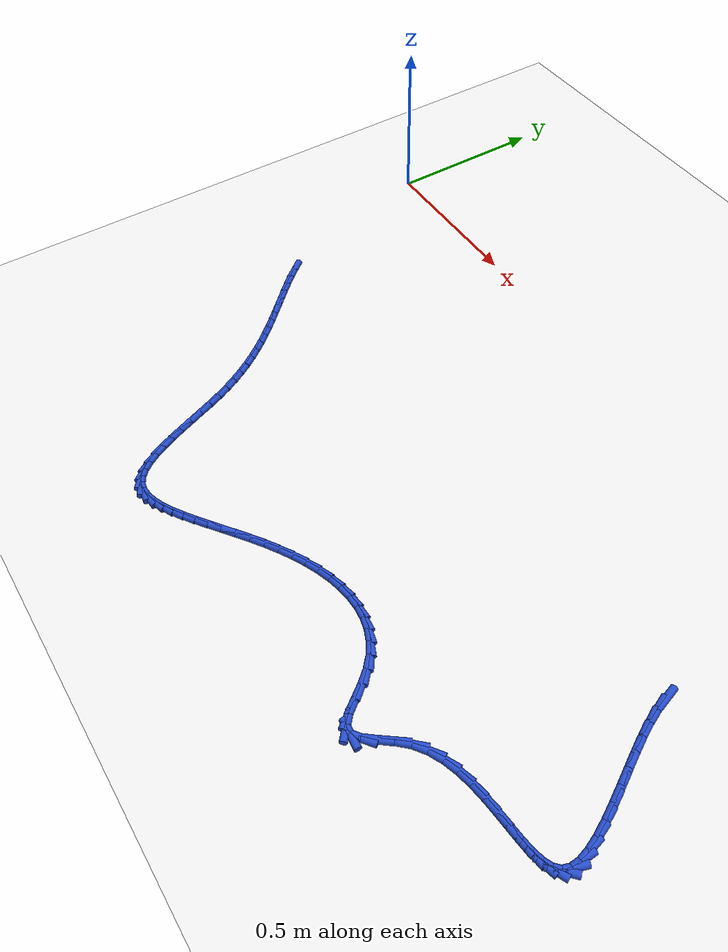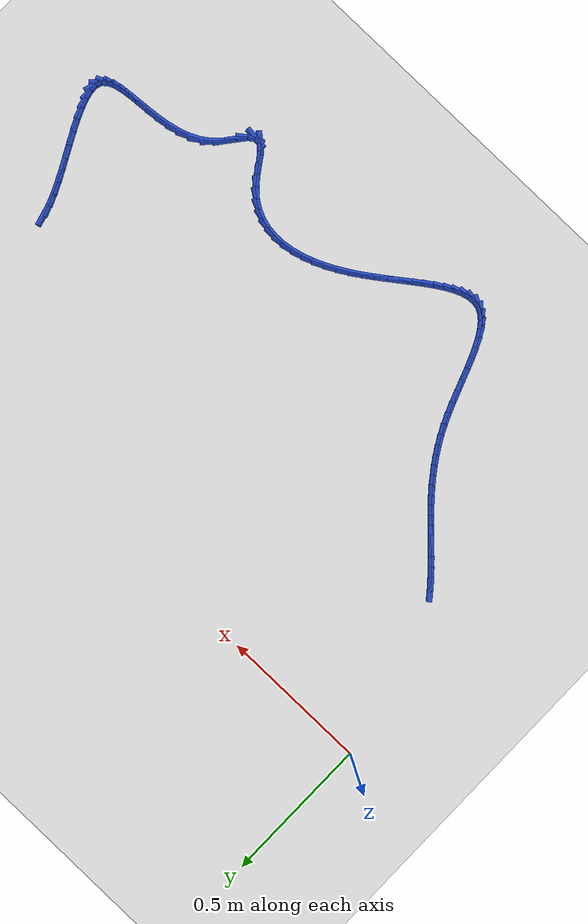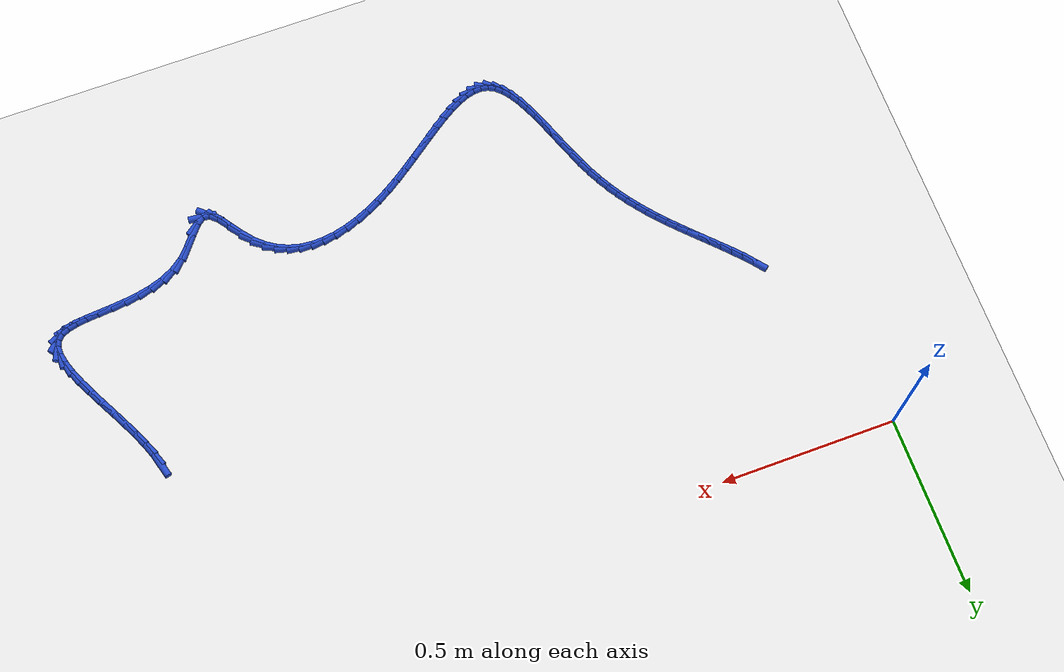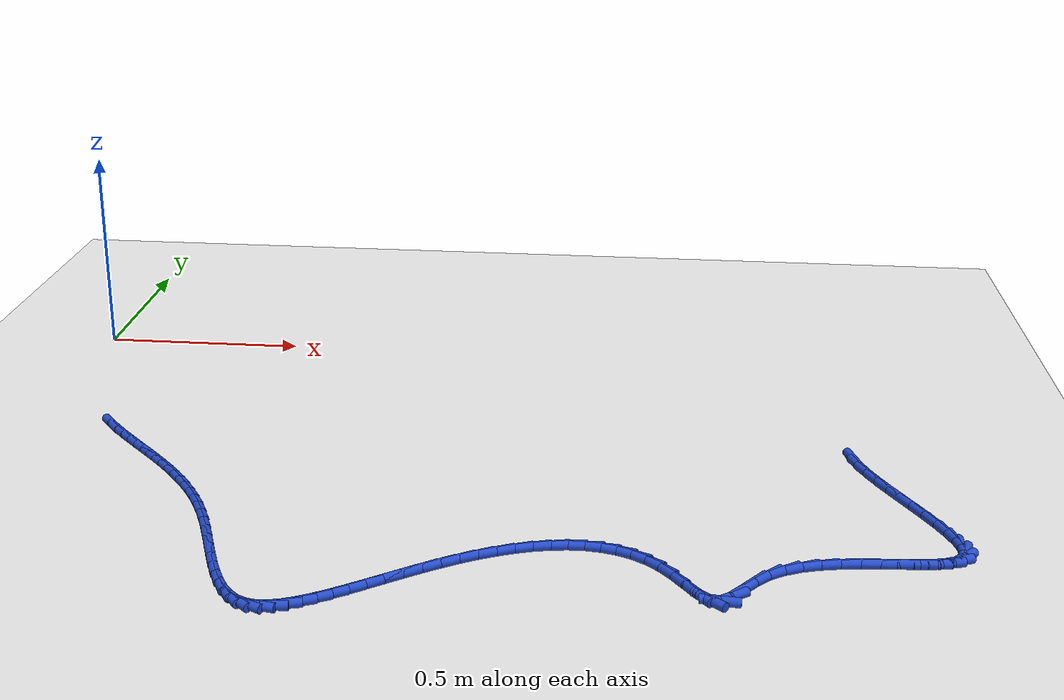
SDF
<sdf version="1.6">
 <world name="default">
  <model name="ground_plane">
   <static>1</static>
   <link name="link">
    <collision name="collision">
     <geometry><plane><normal>0 0 1</normal><size>100 100</size></plane></geometry>
     <surface><friction><ode><mu>100</mu><mu2>50</mu2></ode></friction></surface>
    </collision>
    <visual name="visual">
     <cast_shadows>0</cast_shadows>
     <geometry><plane><normal>0 0 1</normal><size>100 100</size></plane></geometry>
     <material>
      <script><uri>file://media/materials/scripts/gazebo.material</uri><name>Gazebo/WhiteGlow</name></script>
     </material>
    </visual>
   </link>
  </model>
  <model name="line">
   <link name="link_155">
    <pose>1.902216669200962 -0.5668904399281618 0.01 0 1.57 -1.3048344981465045</pose>
    <collision name="collision">
     <geometry><cylinder><radius>0.01</radius><length>0.08</length></cylinder></geometry>
    </collision>
    <visual name="visual">
     <material>
      <script><name>Gazebo/Blue</name><uri>file://media/materials/scripts/gazebo.material</uri></script>
     </material>
     <geometry><cylinder><radius>0.01</radius><length>0.08</length></cylinder></geometry>
    </visual>
   </link>
   <link name="link_156">
    <pose>1.9108414581026154 -0.5985508601704108 0.01 0 1.57 -1.2079651583550948</pose>
    <collision name="collision">
     <geometry><cylinder><radius>0.01</radius><length>0.08</length></cylinder></geometry>
    </collision>
    <visual name="visual">
     <material>
      <script><name>Gazebo/Blue</name><uri>file://media/materials/scripts/gazebo.material</uri></script>
     </material>
     <geometry><cylinder><radius>0.01</radius><length>0.08</length></cylinder></geometry>
    </visual>
   </link>
   <link name="link_157">
    <pose>1.923992331958791 -0.6331913684119473 0.01 0 1.57 -1.1475536828701733</pose>
    <collision name="collision">
     <geometry><cylinder><radius>0.01</radius><length>0.08</length></cylinder></geometry>
    </collision>
    <visual name="visual">
     <material>
      <script><name>Gazebo/Blue</name><uri>file://media/materials/scripts/gazebo.material</uri></script>
     </material>
     <geometry><cylinder><radius>0.01</radius><length>0.08</length></cylinder></geometry>
    </visual>
   </link>
   <link name="link_158">
    <pose>1.9406081023253767 -0.6700769812813461 0.01 0 1.57 -1.1108724636014342</pose>
    <collision name="collision">
     <geometry><cylinder><radius>0.01</radius><length>0.08</length></cylinder></geometry>
    </collision>
    <visual name="visual">
     <material>
      <script><name>Gazebo/Blue</name><uri>file://media/materials/scripts/gazebo.material</uri></script>
     </material>
     <geometry><cylinder><radius>0.01</radius><length>0.08</length></cylinder></geometry>
    </visual>
   </link>
   <link name="link_159">
    <pose>1.959627580758257 -0.7084727154071806 0.01 0 1.57 -1.091414806366081</pose>
    <collision name="collision">
     <geometry><cylinder><radius>0.01</radius><length>0.08</length></cylinder></geometry>
    </collision>
    <visual name="visual">
     <material>
      <script><name>Gazebo/Blue</name><uri>file://media/materials/scripts/gazebo.material</uri></script>
     </material>
     <geometry><cylinder><radius>0.01</radius><length>0.08</length></cylinder></geometry>
    </visual>
   </link>
   <link name="link_160">
    <pose>1.9799895788133177 -0.7476435874180244 0.01 0 1.57 -1.086199641081109</pose>
    <collision name="collision">
     <geometry><cylinder><radius>0.01</radius><length>0.08</length></cylinder></geometry>
    </collision>
    <visual name="visual">
     <material>
      <script><name>Gazebo/Blue</name><uri>file://media/materials/scripts/gazebo.material</uri></script>
     </material>
     <geometry><cylinder><radius>0.01</radius><length>0.08</length></cylinder></geometry>
    </visual>
   </link>
   <link name="link_161">
    <pose>2.000632908046445 -0.7868546139424514 0.01 0 1.57 -1.0946540336081387</pose>
    <collision name="collision">
     <geometry><cylinder><radius>0.01</radius><length>0.08</length></cylinder></geometry>
    </collision>
    <visual name="visual">
     <material>
      <script><name>Gazebo/Blue</name><uri>file://media/materials/scripts/gazebo.material</uri></script>
     </material>
     <geometry><cylinder><radius>0.01</radius><length>0.08</length></cylinder></geometry>
    </visual>
   </link>
   <link name="link_162">
    <pose>2.0204963800135243 -0.8253708116090348 0.01 0 1.57 -1.1184452782590444</pose>
    <collision name="collision">
     <geometry><cylinder><radius>0.01</radius><length>0.08</length></cylinder></geometry>
    </collision>
    <visual name="visual">
     <material>
      <script><name>Gazebo/Blue</name><uri>file://media/materials/scripts/gazebo.material</uri></script>
     </material>
     <geometry><cylinder><radius>0.01</radius><length>0.08</length></cylinder></geometry>
    </visual>
   </link>
   <link name="link_163">
    <pose>2.0385188062704405 -0.8624571970463487 0.01 0 1.57 -1.1621898173378593</pose>
    <collision name="collision">
     <geometry><cylinder><radius>0.01</radius><length>0.08</length></cylinder></geometry>
    </collision>
    <visual name="visual">
     <material>
      <script><name>Gazebo/Blue</name><uri>file://media/materials/scripts/gazebo.material</uri></script>
     </material>
     <geometry><cylinder><radius>0.01</radius><length>0.08</length></cylinder></geometry>
    </visual>
   </link>
   <link name="link_164">
    <pose>2.053638998373081 -0.8973787868829668 0.01 0 1.57 -1.2355372871036305</pose>
    <collision name="collision">
     <geometry><cylinder><radius>0.01</radius><length>0.08</length></cylinder></geometry>
    </collision>
    <visual name="visual">
     <material>
      <script><name>Gazebo/Blue</name><uri>file://media/materials/scripts/gazebo.material</uri></script>
     </material>
     <geometry><cylinder><radius>0.01</radius><length>0.08</length></cylinder></geometry>
    </visual>
   </link>
   <link name="link_165">
    <pose>2.0647957678773303 -0.9294005977474633 0.01 0 1.57 -1.3580458335022347</pose>
    <collision name="collision">
     <geometry><cylinder><radius>0.01</radius><length>0.08</length></cylinder></geometry>
    </collision>
    <visual name="visual">
     <material>
      <script><name>Gazebo/Blue</name><uri>file://media/materials/scripts/gazebo.material</uri></script>
     </material>
     <geometry><cylinder><radius>0.01</radius><length>0.08</length></cylinder></geometry>
    </visual>
   </link>
   <link name="link_166">
    <pose>2.070927926339074 -0.9577876462684103 0.01 0 1.57 -1.5688660968300714</pose>
    <collision name="collision">
     <geometry><cylinder><radius>0.01</radius><length>0.08</length></cylinder></geometry>
    </collision>
    <visual name="visual">
     <material>
      <script><name>Gazebo/Blue</name><uri>file://media/materials/scripts/gazebo.material</uri></script>
     </material>
     <geometry><cylinder><radius>0.01</radius><length>0.08</length></cylinder></geometry>
    </visual>
   </link>
   <link name="link_167">
    <pose>2.070974285314199 -0.9818049490743823 0.01 0 1.57 1.2125976817504938</pose>
    <collision name="collision">
     <geometry><cylinder><radius>0.01</radius><length>0.08</length></cylinder></geometry>
    </collision>
    <visual name="visual">
     <material>
      <script><name>Gazebo/Blue</name><uri>file://media/materials/scripts/gazebo.material</uri></script>
     </material>
     <geometry><cylinder><radius>0.01</radius><length>0.08</length></cylinder></geometry>
    </visual>
   </link>
   <link name="link_168">
    <pose>2.0638893783558565 -1.0007309567893081 0.01 0 1.57 0.7612286504603551</pose>
    <collision name="collision">
     <geometry><cylinder><radius>0.01</radius><length>0.08</length></cylinder></geometry>
    </collision>
    <visual name="visual">
     <material>
      <script><name>Gazebo/Blue</name><uri>file://media/materials/scripts/gazebo.material</uri></script>
     </material>
     <geometry><cylinder><radius>0.01</radius><length>0.08</length></cylinder></geometry>
    </visual>
   </link>
   <link name="link_169">
    <pose>2.0494178926092093 -1.0145192835996508 0.01 0 1.57 0.42860894460636756</pose>
    <collision name="collision">
     <geometry><cylinder><radius>0.01</radius><length>0.08</length></cylinder></geometry>
    </collision>
    <visual name="visual">
     <material>
      <script><name>Gazebo/Blue</name><uri>file://media/materials/scripts/gazebo.material</uri></script>
     </material>
     <geometry><cylinder><radius>0.01</radius><length>0.08</length></cylinder></geometry>
    </visual>
   </link>
   <link name="link_170">
    <pose>2.028448469206932 -1.0241010195363125 0.01 0 1.57 0.2364490787536004</pose>
    <collision name="collision">
     <geometry><cylinder><radius>0.01</radius><length>0.08</length></cylinder></geometry>
    </collision>
    <visual name="visual">
     <material>
      <script><name>Gazebo/Blue</name><uri>file://media/materials/scripts/gazebo.material</uri></script>
     </material>
     <geometry><cylinder><radius>0.01</radius><length>0.08</length></cylinder></geometry>
    </visual>
   </link>
   <link name="link_171">
    <pose>2.00195928243471 -1.0304837581393373 0.01 0 1.57 0.13425772488199023</pose>
    <collision name="collision">
     <geometry><cylinder><radius>0.01</radius><length>0.08</length></cylinder></geometry>
    </collision>
    <visual name="visual">
     <material>
      <script><name>Gazebo/Blue</name><uri>file://media/materials/scripts/gazebo.material</uri></script>
     </material>
     <geometry><cylinder><radius>0.01</radius><length>0.08</length></cylinder></geometry>
    </visual>
   </link>
   <link name="link_172">
    <pose>1.9709285065782254 -1.034675092948769 0.01 0 1.57 0.086719233175756</pose>
    <collision name="collision">
     <geometry><cylinder><radius>0.01</radius><length>0.08</length></cylinder></geometry>
    </collision>
    <visual name="visual">
     <material>
      <script><name>Gazebo/Blue</name><uri>file://media/materials/scripts/gazebo.material</uri></script>
     </material>
     <geometry><cylinder><radius>0.01</radius><length>0.08</length></cylinder></geometry>
    </visual>
   </link>
   <link name="link_173">
    <pose>1.9363343159231636 -1.0376826175046514 0.01 0 1.57 0.07600583452590662</pose>
    <collision name="collision">
     <geometry><cylinder><radius>0.01</radius><length>0.08</length></cylinder></geometry>
    </collision>
    <visual name="visual">
     <material>
      <script><name>Gazebo/Blue</name><uri>file://media/materials/scripts/gazebo.material</uri></script>
     </material>
     <geometry><cylinder><radius>0.01</radius><length>0.08</length></cylinder></geometry>
    </visual>
   </link>
   <link name="link_174">
    <pose>1.8991548847552076 -1.0405139253470286 0.01 0 1.57 0.0941527489379591</pose>
    <collision name="collision">
     <geometry><cylinder><radius>0.01</radius><length>0.08</length></cylinder></geometry>
    </collision>
    <visual name="visual">
     <material>
      <script><name>Gazebo/Blue</name><uri>file://media/materials/scripts/gazebo.material</uri></script>
     </material>
     <geometry><cylinder><radius>0.01</radius><length>0.08</length></cylinder></geometry>
    </visual>
   </link>
   <link name="link_175">
    <pose>1.860368387360042 -1.0441766100159449 0.01 0 1.57 0.13868536002823478</pose>
    <collision name="collision">
     <geometry><cylinder><radius>0.01</radius><length>0.08</length></cylinder></geometry>
    </collision>
    <visual name="visual">
     <material>
      <script><name>Gazebo/Blue</name><uri>file://media/materials/scripts/gazebo.material</uri></script>
     </material>
     <geometry><cylinder><radius>0.01</radius><length>0.08</length></cylinder></geometry>
    </visual>
   </link>
   <link name="link_176">
    <pose>1.8209529980233499 -1.049678265051444 0.01 0 1.57 0.21052817129821916</pose>
    <collision name="collision">
     <geometry><cylinder><radius>0.01</radius><length>0.08</length></cylinder></geometry>
    </collision>
    <visual name="visual">
     <material>
      <script><name>Gazebo/Blue</name><uri>file://media/materials/scripts/gazebo.material</uri></script>
     </material>
     <geometry><cylinder><radius>0.01</radius><length>0.08</length></cylinder></geometry>
    </visual>
   </link>
   <link name="link_177">
    <pose>1.7818868910308159 -1.0580264839935705 0.01 0 1.57 0.31272882272386116</pose>
    <collision name="collision">
     <geometry><cylinder><radius>0.01</radius><length>0.08</length></cylinder></geometry>
    </collision>
    <visual name="visual">
     <material>
      <script><name>Gazebo/Blue</name><uri>file://media/materials/scripts/gazebo.material</uri></script>
     </material>
     <geometry><cylinder><radius>0.01</radius><length>0.08</length></cylinder></geometry>
    </visual>
   </link>
   <link name="link_178">
    <pose>1.7441482406681232 -1.0702288603823675 0.01 0 1.57 0.448810050961958</pose>
    <collision name="collision">
     <geometry><cylinder><radius>0.01</radius><length>0.08</length></cylinder></geometry>
    </collision>
    <visual name="visual">
     <material>
      <script><name>Gazebo/Blue</name><uri>file://media/materials/scripts/gazebo.material</uri></script>
     </material>
     <geometry><cylinder><radius>0.01</radius><length>0.08</length></cylinder></geometry>
    </visual>
   </link>
   <link name="link_179">
    <pose>1.708715221220956 -1.0872929877578796 0.01 0 1.57 0.6196261109645379</pose>
    <collision name="collision">
     <geometry><cylinder><radius>0.01</radius><length>0.08</length></cylinder></geometry>
    </collision>
    <visual name="visual">
     <material>
      <script><name>Gazebo/Blue</name><uri>file://media/materials/scripts/gazebo.material</uri></script>
     </material>
     <geometry><cylinder><radius>0.01</radius><length>0.08</length></cylinder></geometry>
    </visual>
   </link>
   <link name="link_180">
    <pose>1.6765660069749981 -1.1102264596601508 0.01 0 1.57 0.8072228730689643</pose>
    <collision name="collision">
     <geometry><cylinder><radius>0.01</radius><length>0.08</length></cylinder></geometry>
    </collision>
    <visual name="visual">
     <material>
      <script><name>Gazebo/Blue</name><uri>file://media/materials/scripts/gazebo.material</uri></script>
     </material>
     <geometry><cylinder><radius>0.01</radius><length>0.08</length></cylinder></geometry>
    </visual>
   </link>
   <link name="link_181">
    <pose>1.648534164861469 -1.1395093784329824 0.01 0 1.57 0.9103742696268916</pose>
    <collision name="collision">
     <geometry><cylinder><radius>0.01</radius><length>0.08</length></cylinder></geometry>
    </collision>
    <visual name="visual">
     <material>
      <script><name>Gazebo/Blue</name><uri>file://media/materials/scripts/gazebo.material</uri></script>
     </material>
     <geometry><cylinder><radius>0.01</radius><length>0.08</length></cylinder></geometry>
    </visual>
   </link>
   <link name="link_182">
    <pose>1.6241566432866594 -1.1708921087154547 0.01 0 1.57 0.8851980757593264</pose>
    <collision name="collision">
     <geometry><cylinder><radius>0.01</radius><length>0.08</length></cylinder></geometry>
    </collision>
    <visual name="visual">
     <material>
      <script><name>Gazebo/Blue</name><uri>file://media/materials/scripts/gazebo.material</uri></script>
     </material>
     <geometry><cylinder><radius>0.01</radius><length>0.08</length></cylinder></geometry>
    </visual>
   </link>
   <link name="link_183">
    <pose>1.6022863130751914 -1.1976296724774271 0.01 0 1.57 0.6415521189436177</pose>
    <collision name="collision">
     <geometry><cylinder><radius>0.01</radius><length>0.08</length></cylinder></geometry>
    </collision>
    <visual name="visual">
     <material>
      <script><name>Gazebo/Blue</name><uri>file://media/materials/scripts/gazebo.material</uri></script>
     </material>
     <geometry><cylinder><radius>0.01</radius><length>0.08</length></cylinder></geometry>
    </visual>
   </link>
   <link name="link_184">
    <pose>1.5817698815111667 -1.2129546086458025 0.01 0 1.57 -0.11190681473980948</pose>
    <collision name="collision">
     <geometry><cylinder><radius>0.01</radius><length>0.08</length></cylinder></geometry>
    </collision>
    <visual name="visual">
     <material>
      <script><name>Gazebo/Blue</name><uri>file://media/materials/scripts/gazebo.material</uri></script>
     </material>
     <geometry><cylinder><radius>0.01</radius><length>0.08</length></cylinder></geometry>
    </visual>
   </link>
   <link name="link_185">
    <pose>1.5614849535278528 -1.210675063329343 0.01 0 1.57 -0.7342423017345074</pose>
    <collision name="collision">
     <geometry><cylinder><radius>0.01</radius><length>0.08</length></cylinder></geometry>
    </collision>
    <visual name="visual">
     <material>
      <script><name>Gazebo/Blue</name><uri>file://media/materials/scripts/gazebo.material</uri></script>
     </material>
     <geometry><cylinder><radius>0.01</radius><length>0.08</length></cylinder></geometry>
    </visual>
   </link>
   <link name="link_186">
    <pose>1.5407019197533285 -1.191916576450702 0.01 0 1.57 -0.9287573587720803</pose>
    <collision name="collision">
     <geometry><cylinder><radius>0.01</radius><length>0.08</length></cylinder></geometry>
    </collision>
    <visual name="visual">
     <material>
      <script><name>Gazebo/Blue</name><uri>file://media/materials/scripts/gazebo.material</uri></script>
     </material>
     <geometry><cylinder><radius>0.01</radius><length>0.08</length></cylinder></geometry>
    </visual>
   </link>
   <link name="link_187">
    <pose>1.5189615056878925 -1.162840886418869 0.01 0 1.57 -0.9608922976198541</pose>
    <collision name="collision">
     <geometry><cylinder><radius>0.01</radius><length>0.08</length></cylinder></geometry>
    </collision>
    <visual name="visual">
     <material>
      <script><name>Gazebo/Blue</name><uri>file://media/materials/scripts/gazebo.material</uri></script>
     </material>
     <geometry><cylinder><radius>0.01</radius><length>0.08</length></cylinder></geometry>
    </visual>
   </link>
   <link name="link_188">
    <pose>1.4958097676784317 -1.1297090425504461 0.01 0 1.57 -0.8914050594994153</pose>
    <collision name="collision">
     <geometry><cylinder><radius>0.01</radius><length>0.08</length></cylinder></geometry>
    </collision>
    <visual name="visual">
     <material>
      <script><name>Gazebo/Blue</name><uri>file://media/materials/scripts/gazebo.material</uri></script>
     </material>
     <geometry><cylinder><radius>0.01</radius><length>0.08</length></cylinder></geometry>
    </visual>
   </link>
   <link name="link_189">
    <pose>1.4707971069745978 -1.0987395585200899 0.01 0 1.57 -0.7468087875730529</pose>
    <collision name="collision">
     <geometry><cylinder><radius>0.01</radius><length>0.08</length></cylinder></geometry>
    </collision>
    <visual name="visual">
     <material>
      <script><name>Gazebo/Blue</name><uri>file://media/materials/scripts/gazebo.material</uri></script>
     </material>
     <geometry><cylinder><radius>0.01</radius><length>0.08</length></cylinder></geometry>
    </visual>
   </link>
   <link name="link_190">
    <pose>1.4437261949870928 -1.0736812786385121 0.01 0 1.57 -0.5852715742083122</pose>
    <collision name="collision">
     <geometry><cylinder><radius>0.01</radius><length>0.08</length></cylinder></geometry>
    </collision>
    <visual name="visual">
     <material>
      <script><name>Gazebo/Blue</name><uri>file://media/materials/scripts/gazebo.material</uri></script>
     </material>
     <geometry><cylinder><radius>0.01</radius><length>0.08</length></cylinder></geometry>
    </visual>
   </link>
   <link name="link_191">
    <pose>1.4147859534895797 -1.0545017411584825 0.01 0 1.57 -0.41981969043859113</pose>
    <collision name="collision">
     <geometry><cylinder><radius>0.01</radius><length>0.08</length></cylinder></geometry>
    </collision>
    <visual name="visual">
     <material>
      <script><name>Gazebo/Blue</name><uri>file://media/materials/scripts/gazebo.material</uri></script>
     </material>
     <geometry><cylinder><radius>0.01</radius><length>0.08</length></cylinder></geometry>
    </visual>
   </link>
   <link name="link_192">
    <pose>1.3841979789608212 -1.0408486061600084 0.01 0 1.57 -0.2589095117361431</pose>
    <collision name="collision">
     <geometry><cylinder><radius>0.01</radius><length>0.08</length></cylinder></geometry>
    </collision>
    <visual name="visual">
     <material>
      <script><name>Gazebo/Blue</name><uri>file://media/materials/scripts/gazebo.material</uri></script>
     </material>
     <geometry><cylinder><radius>0.01</radius><length>0.08</length></cylinder></geometry>
    </visual>
   </link>
   <link name="link_193">
    <pose>1.35218386787958 -1.0323695337230967 0.01 0 1.57 -0.10965762535059159</pose>
    <collision name="collision">
     <geometry><cylinder><radius>0.01</radius><length>0.08</length></cylinder></geometry>
    </collision>
    <visual name="visual">
     <material>
      <script><name>Gazebo/Blue</name><uri>file://media/materials/scripts/gazebo.material</uri></script>
     </material>
     <geometry><cylinder><radius>0.01</radius><length>0.08</length></cylinder></geometry>
    </visual>
   </link>
   <link name="link_194">
    <pose>1.3189652167246182 -1.0287121839277549 0.01 0 1.57 0.02373808591316115</pose>
    <collision name="collision">
     <geometry><cylinder><radius>0.01</radius><length>0.08</length></cylinder></geometry>
    </collision>
    <visual name="visual">
     <material>
      <script><name>Gazebo/Blue</name><uri>file://media/materials/scripts/gazebo.material</uri></script>
     </material>
     <geometry><cylinder><radius>0.01</radius><length>0.08</length></cylinder></geometry>
    </visual>
   </link>
   <link name="link_195">
    <pose>1.2847636219746996 -1.02952421685399 0.01 0 1.57 0.14005697825410446</pose>
    <collision name="collision">
     <geometry><cylinder><radius>0.01</radius><length>0.08</length></cylinder></geometry>
    </collision>
    <visual name="visual">
     <material>
      <script><name>Gazebo/Blue</name><uri>file://media/materials/scripts/gazebo.material</uri></script>
     </material>
     <geometry><cylinder><radius>0.01</radius><length>0.08</length></cylinder></geometry>
    </visual>
   </link>
   <link name="link_196">
    <pose>1.2498006801085864 -1.03445329258181 0.01 0 1.57 0.24015085653568527</pose>
    <collision name="collision">
     <geometry><cylinder><radius>0.01</radius><length>0.08</length></cylinder></geometry>
    </collision>
    <visual name="visual">
     <material>
      <script><name>Gazebo/Blue</name><uri>file://media/materials/scripts/gazebo.material</uri></script>
     </material>
     <geometry><cylinder><radius>0.01</radius><length>0.08</length></cylinder></geometry>
    </visual>
   </link>
   <link name="link_197">
    <pose>1.2142979876050402 -1.043147071191221 0.01 0 1.57 0.32591197168483843</pose>
    <collision name="collision">
     <geometry><cylinder><radius>0.01</radius><length>0.08</length></cylinder></geometry>
    </collision>
    <visual name="visual">
     <material>
      <script><name>Gazebo/Blue</name><uri>file://media/materials/scripts/gazebo.material</uri></script>
     </material>
     <geometry><cylinder><radius>0.01</radius><length>0.08</length></cylinder></geometry>
    </visual>
   </link>
   <link name="link_198">
    <pose>1.178477140942826 -1.055253212762231 0.01 0 1.57 0.3995400288019717</pose>
    <collision name="collision">
     <geometry><cylinder><radius>0.01</radius><length>0.08</length></cylinder></geometry>
    </collision>
    <visual name="visual">
     <material>
      <script><name>Gazebo/Blue</name><uri>file://media/materials/scripts/gazebo.material</uri></script>
     </material>
     <geometry><cylinder><radius>0.01</radius><length>0.08</length></cylinder></geometry>
    </visual>
   </link>
   <link name="link_199">
    <pose>1.1425597366007052 -1.0704193773748463 0.01 0 1.57 0.46314827096433303</pose>
    <collision name="collision">
     <geometry><cylinder><radius>0.01</radius><length>0.08</length></cylinder></geometry>
    </collision>
    <visual name="visual">
     <material>
      <script><name>Gazebo/Blue</name><uri>file://media/materials/scripts/gazebo.material</uri></script>
     </material>
     <geometry><cylinder><radius>0.01</radius><length>0.08</length></cylinder></geometry>
    </visual>
   </link>
   <link name="link_200">
    <pose>1.1067673710574408 -1.0882932251090751 0.01 0 1.57 0.5185819902758831</pose>
    <collision name="collision">
     <geometry><cylinder><radius>0.01</radius><length>0.08</length></cylinder></geometry>
    </collision>
    <visual name="visual">
     <material>
      <script><name>Gazebo/Blue</name><uri>file://media/materials/scripts/gazebo.material</uri></script>
     </material>
     <geometry><cylinder><radius>0.01</radius><length>0.08</length></cylinder></geometry>
    </visual>
   </link>
   <link name="link_201">
    <pose>1.0713212757163182 -1.108521619982036 0.01 0 1.57 0.5650623373527512</pose>
    <collision name="collision">
     <geometry><cylinder><radius>0.01</radius><length>0.08</length></cylinder></geometry>
    </collision>
    <visual name="visual">
     <material>
      <script><name>Gazebo/Blue</name><uri>file://media/materials/scripts/gazebo.material</uri></script>
     </material>
     <geometry><cylinder><radius>0.01</radius><length>0.08</length></cylinder></geometry>
    </visual>
   </link>
   <link name="link_202">
    <pose>1.0364014916694353 -1.1306616087535386 0.01 0 1.57 0.5995480095689523</pose>
    <collision name="collision">
     <geometry><cylinder><radius>0.01</radius><length>0.08</length></cylinder></geometry>
    </collision>
    <visual name="visual">
     <material>
      <script><name>Gazebo/Blue</name><uri>file://media/materials/scripts/gazebo.material</uri></script>
     </material>
     <geometry><cylinder><radius>0.01</radius><length>0.08</length></cylinder></geometry>
    </visual>
   </link>
   <link name="link_203">
    <pose>1.002109618951108 -1.154099194059975 0.01 0 1.57 0.6226634520423712</pose>
    <collision name="collision">
     <geometry><cylinder><radius>0.01</radius><length>0.08</length></cylinder></geometry>
    </collision>
    <visual name="visual">
     <material>
      <script><name>Gazebo/Blue</name><uri>file://media/materials/scripts/gazebo.material</uri></script>
     </material>
     <geometry><cylinder><radius>0.01</radius><length>0.08</length></cylinder></geometry>
    </visual>
   </link>
   <link name="link_204">
    <pose>0.9685384587348657 -1.1782011922407511 0.01 0 1.57 0.6349478702539472</pose>
    <collision name="collision">
     <geometry><cylinder><radius>0.01</radius><length>0.08</length></cylinder></geometry>
    </collision>
    <visual name="visual">
     <material>
      <script><name>Gazebo/Blue</name><uri>file://media/materials/scripts/gazebo.material</uri></script>
     </material>
     <geometry><cylinder><radius>0.01</radius><length>0.08</length></cylinder></geometry>
    </visual>
   </link>
   <link name="link_205">
    <pose>0.935780812194238 -1.2023344196352717 0.01 0 1.57 0.6362845196816364</pose>
    <collision name="collision">
     <geometry><cylinder><radius>0.01</radius><length>0.08</length></cylinder></geometry>
    </collision>
    <visual name="visual">
     <material>
      <script><name>Gazebo/Blue</name><uri>file://media/materials/scripts/gazebo.material</uri></script>
     </material>
     <geometry><cylinder><radius>0.01</radius><length>0.08</length></cylinder></geometry>
    </visual>
   </link>
   <link name="link_206">
    <pose>0.9039294805027542 -1.2258656925829436 0.01 0 1.57 0.6257827526243948</pose>
    <collision name="collision">
     <geometry><cylinder><radius>0.01</radius><length>0.08</length></cylinder></geometry>
    </collision>
    <visual name="visual">
     <material>
      <script><name>Gazebo/Blue</name><uri>file://media/materials/scripts/gazebo.material</uri></script>
     </material>
     <geometry><cylinder><radius>0.01</radius><length>0.08</length></cylinder></geometry>
    </visual>
   </link>
   <link name="link_207">
    <pose>0.8730772648339429 -1.2481618274231727 0.01 0 1.57 0.6015478745964258</pose>
    <collision name="collision">
     <geometry><cylinder><radius>0.01</radius><length>0.08</length></cylinder></geometry>
    </collision>
    <visual name="visual">
     <material>
      <script><name>Gazebo/Blue</name><uri>file://media/materials/scripts/gazebo.material</uri></script>
     </material>
     <geometry><cylinder><radius>0.01</radius><length>0.08</length></cylinder></geometry>
    </visual>
   </link>
   <link name="link_208">
    <pose>0.8433169663613334 -1.2685896404953652 0.01 0 1.57 0.5602727898634986</pose>
    <collision name="collision">
     <geometry><cylinder><radius>0.01</radius><length>0.08</length></cylinder></geometry>
    </collision>
    <visual name="visual">
     <material>
      <script><name>Gazebo/Blue</name><uri>file://media/materials/scripts/gazebo.material</uri></script>
     </material>
     <geometry><cylinder><radius>0.01</radius><length>0.08</length></cylinder></geometry>
    </visual>
   </link>
   <link name="link_209">
    <pose>0.8147413862584545 -1.2865159481389263 0.01 0 1.57 0.496569144146594</pose>
    <collision name="collision">
     <geometry><cylinder><radius>0.01</radius><length>0.08</length></cylinder></geometry>
    </collision>
    <visual name="visual">
     <material>
      <script><name>Gazebo/Blue</name><uri>file://media/materials/scripts/gazebo.material</uri></script>
     </material>
     <geometry><cylinder><radius>0.01</radius><length>0.08</length></cylinder></geometry>
    </visual>
   </link>
   <link name="link_210">
    <pose>0.7874433256988355 -1.3013075666932623 0.01 0 1.57 0.4020162194447222</pose>
    <collision name="collision">
     <geometry><cylinder><radius>0.01</radius><length>0.08</length></cylinder></geometry>
    </collision>
    <visual name="visual">
     <material>
      <script><name>Gazebo/Blue</name><uri>file://media/materials/scripts/gazebo.material</uri></script>
     </material>
     <geometry><cylinder><radius>0.01</radius><length>0.08</length></cylinder></geometry>
    </visual>
   </link>
   <link name="link_211">
    <pose>0.7615155858560054 -1.3123313124977793 0.01 0 1.57 0.2643686246396174</pose>
    <collision name="collision">
     <geometry><cylinder><radius>0.01</radius><length>0.08</length></cylinder></geometry>
    </collision>
    <visual name="visual">
     <material>
      <script><name>Gazebo/Blue</name><uri>file://media/materials/scripts/gazebo.material</uri></script>
     </material>
     <geometry><cylinder><radius>0.01</radius><length>0.08</length></cylinder></geometry>
    </visual>
   </link>
   <link name="link_212">
    <pose>0.7370509679034933 -1.318954001891883 0.01 0 1.57 0.0692274702807489</pose>
    <collision name="collision">
     <geometry><cylinder><radius>0.01</radius><length>0.08</length></cylinder></geometry>
    </collision>
    <visual name="visual">
     <material>
      <script><name>Gazebo/Blue</name><uri>file://media/materials/scripts/gazebo.material</uri></script>
     </material>
     <geometry><cylinder><radius>0.01</radius><length>0.08</length></cylinder></geometry>
    </visual>
   </link>
   <link name="link_213">
    <pose>0.7141422730148279 -1.3205424512149795 0.01 0 1.57 -0.18955817912903616</pose>
    <collision name="collision">
     <geometry><cylinder><radius>0.01</radius><length>0.08</length></cylinder></geometry>
    </collision>
    <visual name="visual">
     <material>
      <script><name>Gazebo/Blue</name><uri>file://media/materials/scripts/gazebo.material</uri></script>
     </material>
     <geometry><cylinder><radius>0.01</radius><length>0.08</length></cylinder></geometry>
    </visual>
   </link>
   <link name="link_214">
    <pose>0.6928823023635392 -1.3164634768064745 0.01 0 1.57 -0.48402492140945147</pose>
    <collision name="collision">
     <geometry><cylinder><radius>0.01</radius><length>0.08</length></cylinder></geometry>
    </collision>
    <visual name="visual">
     <material>
      <script><name>Gazebo/Blue</name><uri>file://media/materials/scripts/gazebo.material</uri></script>
     </material>
     <geometry><cylinder><radius>0.01</radius><length>0.08</length></cylinder></geometry>
    </visual>
   </link>
   <link name="link_215">
    <pose>0.6733386600280102 -1.3061886524569664 0.01 0 1.57 -0.7322236267282068</pose>
    <collision name="collision">
     <geometry><cylinder><radius>0.01</radius><length>0.08</length></cylinder></geometry>
    </collision>
    <visual name="visual">
     <material>
      <script><name>Gazebo/Blue</name><uri>file://media/materials/scripts/gazebo.material</uri></script>
     </material>
     <geometry><cylinder><radius>0.01</radius><length>0.08</length></cylinder></geometry>
    </visual>
   </link>
   <link name="link_216">
    <pose>0.6553743867560298 -1.290040028291584 0.01 0 1.57 -0.9078659084439933</pose>
    <collision name="collision">
     <geometry><cylinder><radius>0.01</radius><length>0.08</length></cylinder></geometry>
    </collision>
    <visual name="visual">
     <material>
      <script><name>Gazebo/Blue</name><uri>file://media/materials/scripts/gazebo.material</uri></script>
     </material>
     <geometry><cylinder><radius>0.01</radius><length>0.08</length></cylinder></geometry>
    </visual>
   </link>
   <link name="link_217">
    <pose>0.6387531340488485 -1.2687528673111088 0.01 0 1.57 -1.0274444216833383</pose>
    <collision name="collision">
     <geometry><cylinder><radius>0.01</radius><length>0.08</length></cylinder></geometry>
    </collision>
    <visual name="visual">
     <material>
      <script><name>Gazebo/Blue</name><uri>file://media/materials/scripts/gazebo.material</uri></script>
     </material>
     <geometry><cylinder><radius>0.01</radius><length>0.08</length></cylinder></geometry>
    </visual>
   </link>
   <link name="link_218">
    <pose>0.6232378936814437 -1.243065175342132 0.01 0 1.57 -1.1079360011601846</pose>
    <collision name="collision">
     <geometry><cylinder><radius>0.01</radius><length>0.08</length></cylinder></geometry>
    </collision>
    <visual name="visual">
     <material>
      <script><name>Gazebo/Blue</name><uri>file://media/materials/scripts/gazebo.material</uri></script>
     </material>
     <geometry><cylinder><radius>0.01</radius><length>0.08</length></cylinder></geometry>
    </visual>
   </link>
   <link name="link_219">
    <pose>0.6085916574287924 -1.2137149582112448 0.01 0 1.57 -1.161144742258869</pose>
    <collision name="collision">
     <geometry><cylinder><radius>0.01</radius><length>0.08</length></cylinder></geometry>
    </collision>
    <visual name="visual">
     <material>
      <script><name>Gazebo/Blue</name><uri>file://media/materials/scripts/gazebo.material</uri></script>
     </material>
     <geometry><cylinder><radius>0.01</radius><length>0.08</length></cylinder></geometry>
    </visual>
   </link>
   <link name="link_220">
    <pose>0.5945774170658711 -1.1814402217450368 0.01 0 1.57 -1.1944305332618508</pose>
    <collision name="collision">
     <geometry><cylinder><radius>0.01</radius><length>0.08</length></cylinder></geometry>
    </collision>
    <visual name="visual">
     <material>
      <script><name>Gazebo/Blue</name><uri>file://media/materials/scripts/gazebo.material</uri></script>
     </material>
     <geometry><cylinder><radius>0.01</radius><length>0.08</length></cylinder></geometry>
    </visual>
   </link>
   <link name="link_221">
    <pose>0.580958164367658 -1.1469789717701016 0.01 0 1.57 -1.2121449468814562</pose>
    <collision name="collision">
     <geometry><cylinder><radius>0.01</radius><length>0.08</length></cylinder></geometry>
    </collision>
    <visual name="visual">
     <material>
      <script><name>Gazebo/Blue</name><uri>file://media/materials/scripts/gazebo.material</uri></script>
     </material>
     <geometry><cylinder><radius>0.01</radius><length>0.08</length></cylinder></geometry>
    </visual>
   </link>
   <link name="link_222">
    <pose>0.5674968911091298 -1.111069214113029 0.01 0 1.57 -1.2166372565263301</pose>
    <collision name="collision">
     <geometry><cylinder><radius>0.01</radius><length>0.08</length></cylinder></geometry>
    </collision>
    <visual name="visual">
     <material>
      <script><name>Gazebo/Blue</name><uri>file://media/materials/scripts/gazebo.material</uri></script>
     </material>
     <geometry><cylinder><radius>0.01</radius><length>0.08</length></cylinder></geometry>
    </visual>
   </link>
   <link name="link_223">
    <pose>0.5539565890652632 -1.0744489546004103 0.01 0 1.57 -1.2088177395455995</pose>
    <collision name="collision">
     <geometry><cylinder><radius>0.01</radius><length>0.08</length></cylinder></geometry>
    </collision>
    <visual name="visual">
     <material>
      <script><name>Gazebo/Blue</name><uri>file://media/materials/scripts/gazebo.material</uri></script>
     </material>
     <geometry><cylinder><radius>0.01</radius><length>0.08</length></cylinder></geometry>
    </visual>
   </link>
   <link name="link_224">
    <pose>0.5401002500110357 -1.0378561990588366 0.01 0 1.57 -1.188402861132362</pose>
    <collision name="collision">
     <geometry><cylinder><radius>0.01</radius><length>0.08</length></cylinder></geometry>
    </collision>
    <visual name="visual">
     <material>
      <script><name>Gazebo/Blue</name><uri>file://media/materials/scripts/gazebo.material</uri></script>
     </material>
     <geometry><cylinder><radius>0.01</radius><length>0.08</length></cylinder></geometry>
    </visual>
   </link>
   <link name="link_225">
    <pose>0.5256908657214244 -1.0020289533148992 0.01 0 1.57 -1.153964816424006</pose>
    <collision name="collision">
     <geometry><cylinder><radius>0.01</radius><length>0.08</length></cylinder></geometry>
    </collision>
    <visual name="visual">
     <material>
      <script><name>Gazebo/Blue</name><uri>file://media/materials/scripts/gazebo.material</uri></script>
     </material>
     <geometry><cylinder><radius>0.01</radius><length>0.08</length></cylinder></geometry>
    </visual>
   </link>
   <link name="link_226">
    <pose>0.510492114828147 -0.9677030225241515 0.01 0 1.57 -1.1085392764176447</pose>
    <collision name="collision">
     <geometry><cylinder><radius>0.01</radius><length>0.08</length></cylinder></geometry>
    </collision>
    <visual name="visual">
     <material>
      <script><name>Gazebo/Blue</name><uri>file://media/materials/scripts/gazebo.material</uri></script>
     </material>
     <geometry><cylinder><radius>0.01</radius><length>0.08</length></cylinder></geometry>
    </visual>
   </link>
   <link name="link_227">
    <pose>0.4943584822933126 -0.9353232707339678 0.01 0 1.57 -1.062413619862031</pose>
    <collision name="collision">
     <geometry><cylinder><radius>0.01</radius><length>0.08</length></cylinder></geometry>
    </collision>
    <visual name="visual">
     <material>
      <script><name>Gazebo/Blue</name><uri>file://media/materials/scripts/gazebo.material</uri></script>
     </material>
     <geometry><cylinder><radius>0.01</radius><length>0.08</length></cylinder></geometry>
    </visual>
   </link>
   <link name="link_228">
    <pose>0.47732511163015723 -0.9047557367177498 0.01 0 1.57 -1.0177287498059</pose>
    <collision name="collision">
     <geometry><cylinder><radius>0.01</radius><length>0.08</length></cylinder></geometry>
    </collision>
    <visual name="visual">
     <material>
      <script><name>Gazebo/Blue</name><uri>file://media/materials/scripts/gazebo.material</uri></script>
     </material>
     <geometry><cylinder><radius>0.01</radius><length>0.08</length></cylinder></geometry>
    </visual>
   </link>
   <link name="link_229">
    <pose>0.4594485157261304 -0.8757979923326826 0.01 0 1.57 -0.9753828275754541</pose>
    <collision name="collision">
     <geometry><cylinder><radius>0.01</radius><length>0.08</length></cylinder></geometry>
    </collision>
    <visual name="visual">
     <material>
      <script><name>Gazebo/Blue</name><uri>file://media/materials/scripts/gazebo.material</uri></script>
     </material>
     <geometry><cylinder><radius>0.01</radius><length>0.08</length></cylinder></geometry>
    </visual>
   </link>
   <link name="link_230">
    <pose>0.44078520746868305 -0.8482476094359535 0.01 0 1.57 -0.936235411487847</pose>
    <collision name="collision">
     <geometry><cylinder><radius>0.01</radius><length>0.08</length></cylinder></geometry>
    </collision>
    <visual name="visual">
     <material>
      <script><name>Gazebo/Blue</name><uri>file://media/materials/scripts/gazebo.material</uri></script>
     </material>
     <geometry><cylinder><radius>0.01</radius><length>0.08</length></cylinder></geometry>
    </visual>
   </link>
   <link name="link_231">
    <pose>0.4213916997452644 -0.821902159884747 0.01 0 1.57 -0.9010596348769759</pose>
    <collision name="collision">
     <geometry><cylinder><radius>0.01</radius><length>0.08</length></cylinder></geometry>
    </collision>
    <visual name="visual">
     <material>
      <script><name>Gazebo/Blue</name><uri>file://media/materials/scripts/gazebo.material</uri></script>
     </material>
     <geometry><cylinder><radius>0.01</radius><length>0.08</length></cylinder></geometry>
    </visual>
   </link>
   <link name="link_232">
    <pose>0.4013245054433243 -0.7965592155362484 0.01 0 1.57 -0.8705057028974944</pose>
    <collision name="collision">
     <geometry><cylinder><radius>0.01</radius><length>0.08</length></cylinder></geometry>
    </collision>
    <visual name="visual">
     <material>
      <script><name>Gazebo/Blue</name><uri>file://media/materials/scripts/gazebo.material</uri></script>
     </material>
     <geometry><cylinder><radius>0.01</radius><length>0.08</length></cylinder></geometry>
    </visual>
   </link>
   <link name="link_233">
    <pose>0.3806401374503128 -0.7720163482476438 0.01 0 1.57 -0.8450788059287934</pose>
    <collision name="collision">
     <geometry><cylinder><radius>0.01</radius><length>0.08</length></cylinder></geometry>
    </collision>
    <visual name="visual">
     <material>
      <script><name>Gazebo/Blue</name><uri>file://media/materials/scripts/gazebo.material</uri></script>
     </material>
     <geometry><cylinder><radius>0.01</radius><length>0.08</length></cylinder></geometry>
    </visual>
   </link>
   <link name="link_234">
    <pose>0.35939510865367963 -0.7480711298761183 0.01 0 1.57 -0.8251311861793226</pose>
    <collision name="collision">
     <geometry><cylinder><radius>0.01</radius><length>0.08</length></cylinder></geometry>
    </collision>
    <visual name="visual">
     <material>
      <script><name>Gazebo/Blue</name><uri>file://media/materials/scripts/gazebo.material</uri></script>
     </material>
     <geometry><cylinder><radius>0.01</radius><length>0.08</length></cylinder></geometry>
    </visual>
   </link>
   <link name="link_235">
    <pose>0.3376459319408748 -0.7245211322788577 0.01 0 1.57 -0.8108655628662281</pose>
    <collision name="collision">
     <geometry><cylinder><radius>0.01</radius><length>0.08</length></cylinder></geometry>
    </collision>
    <visual name="visual">
     <material>
      <script><name>Gazebo/Blue</name><uri>file://media/materials/scripts/gazebo.material</uri></script>
     </material>
     <geometry><cylinder><radius>0.01</radius><length>0.08</length></cylinder></geometry>
    </visual>
   </link>
   <link name="link_236">
    <pose>0.31544912019934723 -0.7011639273130467 0.01 0 1.57 -0.8023488721575067</pose>
    <collision name="collision">
     <geometry><cylinder><radius>0.01</radius><length>0.08</length></cylinder></geometry>
    </collision>
    <visual name="visual">
     <material>
      <script><name>Gazebo/Blue</name><uri>file://media/materials/scripts/gazebo.material</uri></script>
     </material>
     <geometry><cylinder><radius>0.01</radius><length>0.08</length></cylinder></geometry>
    </visual>
   </link>
   <link name="link_237">
    <pose>0.29286149764104996 -0.6777972725703072 0.01 0 1.57 -0.8000074912345492</pose>
    <collision name="collision">
     <geometry><cylinder><radius>0.01</radius><length>0.08</length></cylinder></geometry>
    </collision>
    <visual name="visual">
     <material>
      <script><name>Gazebo/Blue</name><uri>file://media/materials/scripts/gazebo.material</uri></script>
     </material>
     <geometry><cylinder><radius>0.01</radius><length>0.08</length></cylinder></geometry>
    </visual>
   </link>
   <link name="link_238">
    <pose>0.2699929513994262 -0.6542505826807646 0.01 0 1.57 -0.8047114824815766</pose>
    <collision name="collision">
     <geometry><cylinder><radius>0.01</radius><length>0.08</length></cylinder></geometry>
    </collision>
    <visual name="visual">
     <material>
      <script><name>Gazebo/Blue</name><uri>file://media/materials/scripts/gazebo.material</uri></script>
     </material>
     <geometry><cylinder><radius>0.01</radius><length>0.08</length></cylinder></geometry>
    </visual>
   </link>
   <link name="link_239">
    <pose>0.24706596012637794 -0.6304204437369341 0.01 0 1.57 -0.8164770782339013</pose>
    <collision name="collision">
     <geometry><cylinder><radius>0.01</radius><length>0.08</length></cylinder></geometry>
    </collision>
    <visual name="visual">
     <material>
      <script><name>Gazebo/Blue</name><uri>file://media/materials/scripts/gazebo.material</uri></script>
     </material>
     <geometry><cylinder><radius>0.01</radius><length>0.08</length></cylinder></geometry>
    </visual>
   </link>
   <link name="link_240">
    <pose>0.22431737683299685 -0.6062120174926313 0.01 0 1.57 -0.8353032152955251</pose>
    <collision name="collision">
     <geometry><cylinder><radius>0.01</radius><length>0.08</length></cylinder></geometry>
    </collision>
    <visual name="visual">
     <material>
      <script><name>Gazebo/Blue</name><uri>file://media/materials/scripts/gazebo.material</uri></script>
     </material>
     <geometry><cylinder><radius>0.01</radius><length>0.08</length></cylinder></geometry>
    </visual>
   </link>
   <link name="link_241">
    <pose>0.20198405453037468 -0.5815304657016722 0.01 0 1.57 -0.8612856524932418</pose>
    <collision name="collision">
     <geometry><cylinder><radius>0.01</radius><length>0.08</length></cylinder></geometry>
    </collision>
    <visual name="visual">
     <material>
      <script><name>Gazebo/Blue</name><uri>file://media/materials/scripts/gazebo.material</uri></script>
     </material>
     <geometry><cylinder><radius>0.01</radius><length>0.08</length></cylinder></geometry>
    </visual>
   </link>
   <link name="link_242">
    <pose>0.18030284622960316 -0.5562809501178732 0.01 0 1.57 -0.8945890426684344</pose>
    <collision name="collision">
     <geometry><cylinder><radius>0.01</radius><length>0.08</length></cylinder></geometry>
    </collision>
    <visual name="visual">
     <material>
      <script><name>Gazebo/Blue</name><uri>file://media/materials/scripts/gazebo.material</uri></script>
     </material>
     <geometry><cylinder><radius>0.01</radius><length>0.08</length></cylinder></geometry>
    </visual>
   </link>
  </model>
 </world>
</sdf>
